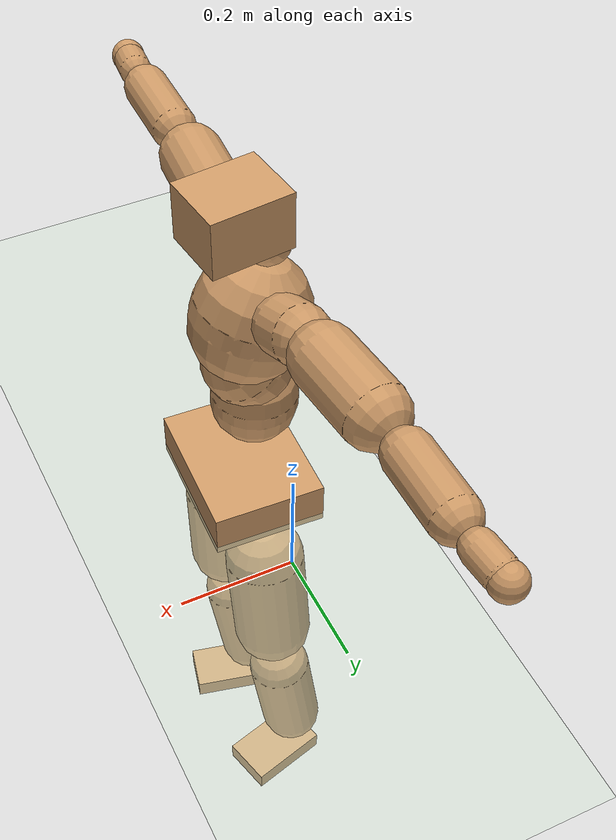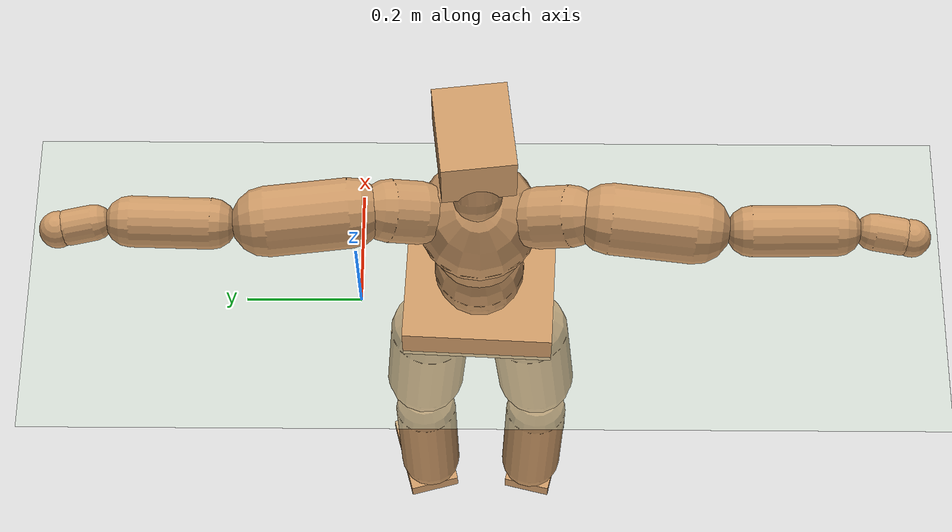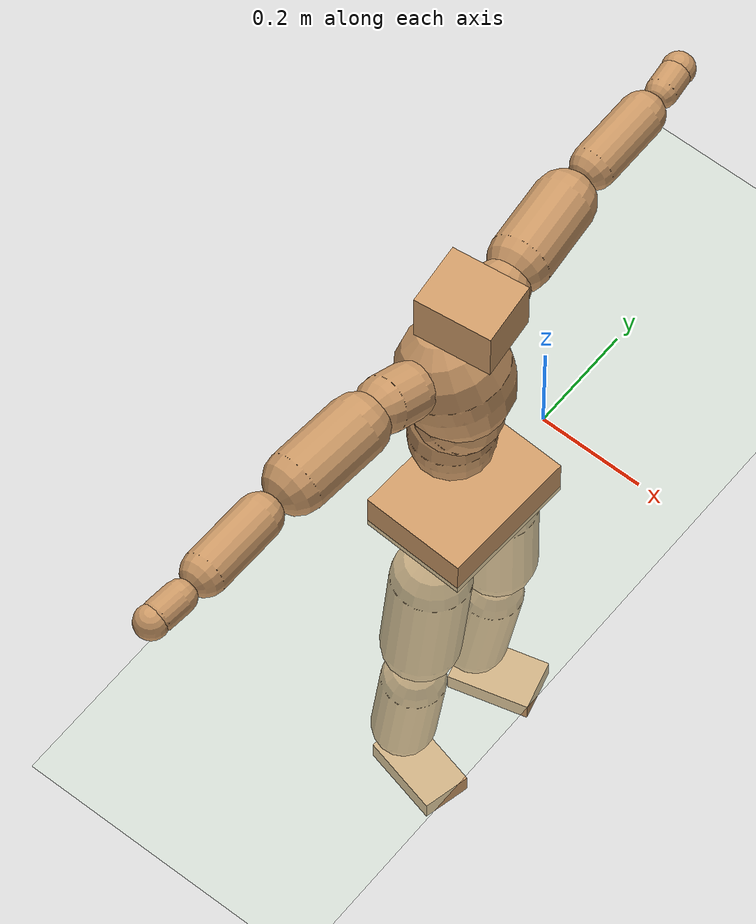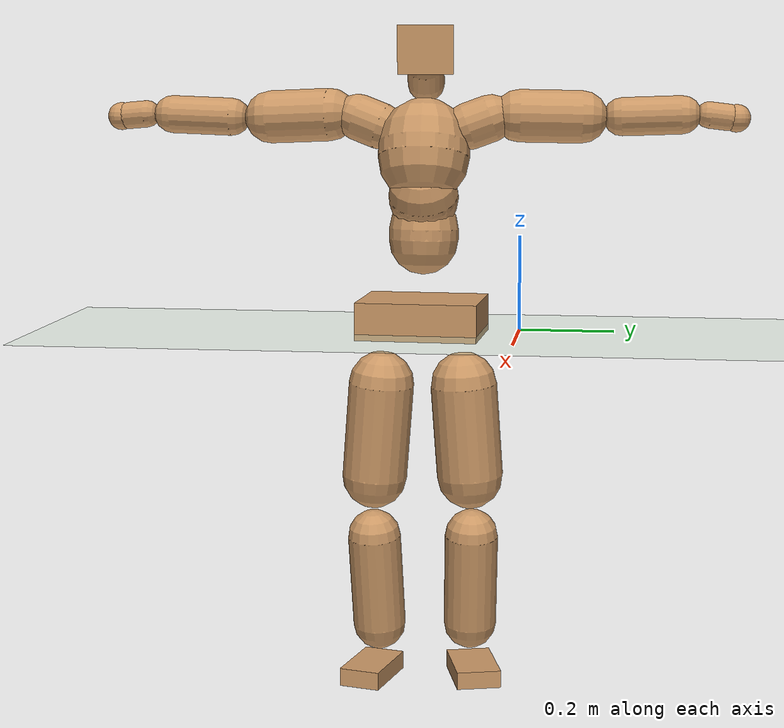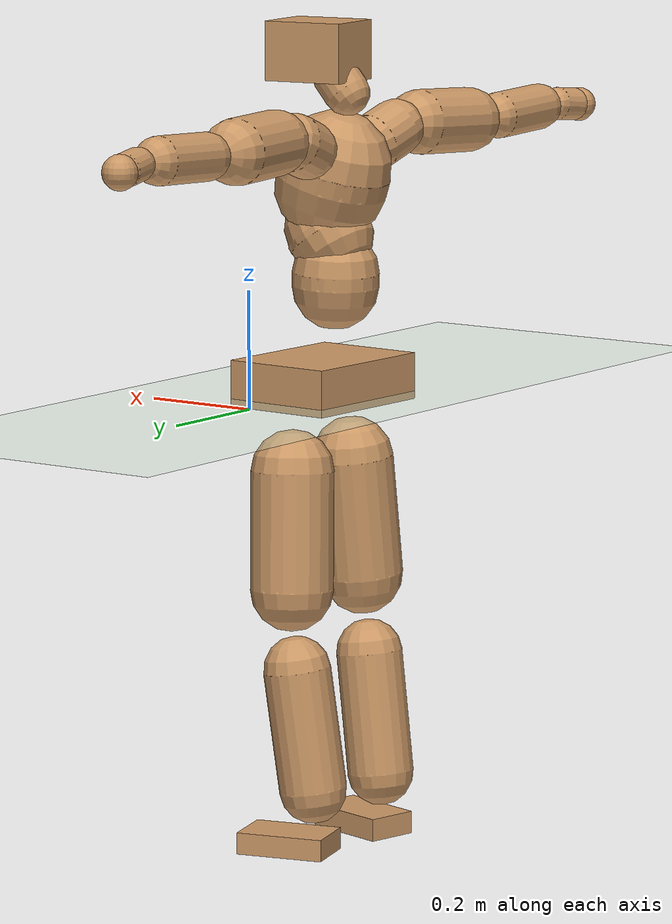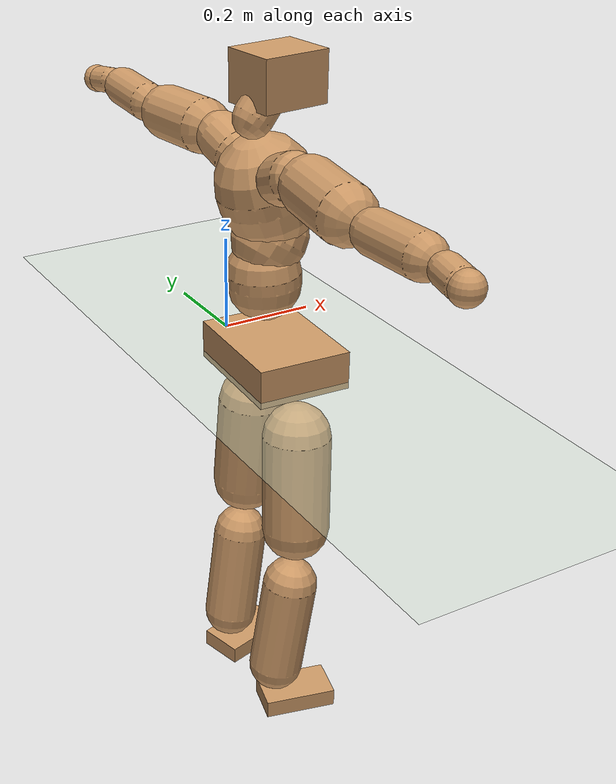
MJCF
<mujoco model="humanoid">
  <compiler coordinate="local" angle="radian"/>
  <default>
    <joint damping="0.0" armature="0.01" stiffness="0.0" limited="true"/>
    <geom conaffinity="1" condim="3" contype="7" margin="0.001" rgba="0.8 0.6 .4 1"/>
  </default>
  <asset>
    <texture type="skybox" builtin="gradient" rgb1=".4 .5 .6" rgb2="0 0 0" width="100" height="100"/>
    <texture builtin="flat" height="1278" mark="cross" markrgb="1 1 1" name="texgeom" random="0.01" rgb1="0.8 0.6 0.4" rgb2="0.8 0.6 0.4" type="cube" width="127"/>
    <texture builtin="checker" height="100" name="texplane" rgb1="0 0 0" rgb2="0.8 0.8 0.8" type="2d" width="100"/>
    <material name="MatPlane" reflectance="0.5" shininess="1" specular="1" texrepeat="60 60" texture="texplane"/>
    <material name="geom" texture="texgeom" texuniform="true"/>
  </asset>
  <worldbody>
    <light cutoff="100" diffuse="1 1 1" dir="-0 0 -1.3" directional="true" exponent="1" pos="0 0 1.3" specular=".1 .1 .1"/>
    <geom conaffinity="1" condim="3" name="floor" pos="0 0 0" rgba="0.8 0.9 0.8 1" size="100 100 .2" type="plane" material="MatPlane"/>
    <body name="Pelvis" pos="0.002 -0.2069 0.0374">
      <freejoint name="Pelvis"/>
      <geom type="box" contype="1" conaffinity="1" density="500" pos="-0.0052 0.0002 -0.0129" size="0.0976 0.1285 0.0397" quat="0.9997 0.0000 0.0000 -0.0225" name="Pelvis"/>
      <body name="L_Hip" pos="-0.0023 0.0847 -0.0906">
        <joint name="L_Hip_x" type="hinge" pos="0 0 0" axis="1 0 0" stiffness="800" damping="80" armature="0.02" range="-180.0000 180.0000"/>
        <joint name="L_Hip_y" type="hinge" pos="0 0 0" axis="0 1 0" stiffness="800" damping="80" armature="0.02" range="-180.0000 180.0000"/>
        <joint name="L_Hip_z" type="hinge" pos="0 0 0" axis="0 0 1" stiffness="800" damping="80" armature="0.02" range="-180.0000 180.0000"/>
        <geom type="capsule" contype="1" conaffinity="1" density="500" fromto="-0.0026 0.0045 -0.0672 -0.0104 0.0180 -0.2688" size="0.0708" name="L_Hip"/>
        <body name="L_Knee" pos="-0.013 0.0225 -0.336">
          <joint name="L_Knee_x" type="hinge" pos="0 0 0" axis="1 0 0" stiffness="800" damping="80" armature="0.02" range="-180.0000 180.0000"/>
          <joint name="L_Knee_y" type="hinge" pos="0 0 0" axis="0 1 0" stiffness="800" damping="80" armature="0.02" range="-180.0000 180.0000"/>
          <joint name="L_Knee_z" type="hinge" pos="0 0 0" axis="0 0 1" stiffness="800" damping="80" armature="0.02" range="-180.0000 180.0000"/>
          <geom type="capsule" contype="1" conaffinity="1" density="500" fromto="-0.0097 -0.0018 -0.0688 -0.0390 -0.0072 -0.2751" size="0.0575" name="L_Knee"/>
          <body name="L_Ankle" pos="-0.0487 -0.009 -0.3439">
            <joint name="L_Ankle_x" type="hinge" pos="0 0 0" axis="1 0 0" stiffness="800" damping="80" armature="0.02" range="-180.0000 180.0000"/>
            <joint name="L_Ankle_y" type="hinge" pos="0 0 0" axis="0 1 0" stiffness="800" damping="80" armature="0.02" range="-180.0000 180.0000"/>
            <joint name="L_Ankle_z" type="hinge" pos="0 0 0" axis="0 0 1" stiffness="800" damping="80" armature="0.02" range="-180.0000 180.0000"/>
            <geom type="box" contype="1" conaffinity="1" density="500" pos="0.0525 0.0139 -0.0244" size="0.0763 0.0479 0.0187" quat="0.9917 0.0000 0.0000 0.1289" name="L_Ankle"/>
            <body name="L_Toe" pos="0.1049 0.0278 -0.0489">
              <joint name="L_Toe_x" type="hinge" pos="0 0 0" axis="1 0 0" stiffness="500" damping="50" armature="0.02" range="-180.0000 180.0000"/>
              <joint name="L_Toe_y" type="hinge" pos="0 0 0" axis="0 1 0" stiffness="500" damping="50" armature="0.02" range="-180.0000 180.0000"/>
              <joint name="L_Toe_z" type="hinge" pos="0 0 0" axis="0 0 1" stiffness="500" damping="50" armature="0.02" range="-180.0000 180.0000"/>
              <geom type="box" contype="1" conaffinity="1" density="500" pos="0.0000 0.0000 0.0258" size="0.0009 0.0023 0.001" quat="0.9908 0.0000 0.0000 0.1353" name="L_Toe"/>
            </body>
          </body>
        </body>
      </body>
      <body name="R_Hip" pos="-0.0003 -0.0828 -0.0903">
        <joint name="R_Hip_x" type="hinge" pos="0 0 0" axis="1 0 0" stiffness="800" damping="80" armature="0.02" range="-180.0000 180.0000"/>
        <joint name="R_Hip_y" type="hinge" pos="0 0 0" axis="0 1 0" stiffness="800" damping="80" armature="0.02" range="-180.0000 180.0000"/>
        <joint name="R_Hip_z" type="hinge" pos="0 0 0" axis="0 0 1" stiffness="800" damping="80" armature="0.02" range="-180.0000 180.0000"/>
        <geom type="capsule" contype="1" conaffinity="1" density="500" fromto="-0.0029 -0.0056 -0.0686 -0.0118 -0.0224 -0.2745" size="0.0702" name="R_Hip"/>
        <body name="R_Knee" pos="-0.0147 -0.028 -0.3431">
          <joint name="R_Knee_x" type="hinge" pos="0 0 0" axis="1 0 0" stiffness="800" damping="80" armature="0.02" range="-180.0000 180.0000"/>
          <joint name="R_Knee_y" type="hinge" pos="0 0 0" axis="0 1 0" stiffness="800" damping="80" armature="0.02" range="-180.0000 180.0000"/>
          <joint name="R_Knee_z" type="hinge" pos="0 0 0" axis="0 0 1" stiffness="800" damping="80" armature="0.02" range="-180.0000 180.0000"/>
          <geom type="capsule" contype="1" conaffinity="1" density="500" fromto="-0.0095 0.0022 -0.0694 -0.0381 0.0089 -0.2778" size="0.0575" name="R_Knee"/>
          <body name="R_Ankle" pos="-0.0477 0.0112 -0.3472">
            <joint name="R_Ankle_x" type="hinge" pos="0 0 0" axis="1 0 0" stiffness="800" damping="80" armature="0.02" range="-180.0000 180.0000"/>
            <joint name="R_Ankle_y" type="hinge" pos="0 0 0" axis="0 1 0" stiffness="800" damping="80" armature="0.02" range="-180.0000 180.0000"/>
            <joint name="R_Ankle_z" type="hinge" pos="0 0 0" axis="0 0 1" stiffness="800" damping="80" armature="0.02" range="-180.0000 180.0000"/>
            <geom type="box" contype="1" conaffinity="1" density="500" pos="0.0543 -0.0130 -0.0224" size="0.0766 0.0448 0.0194" quat="0.9931 0.0000 0.0000 -0.1174" name="R_Ankle"/>
            <body name="R_Toe" pos="0.1086 -0.0261 -0.0449">
              <joint name="R_Toe_x" type="hinge" pos="0 0 0" axis="1 0 0" stiffness="500" damping="50" armature="0.02" range="-180.0000 180.0000"/>
              <joint name="R_Toe_y" type="hinge" pos="0 0 0" axis="0 1 0" stiffness="500" damping="50" armature="0.02" range="-180.0000 180.0000"/>
              <joint name="R_Toe_z" type="hinge" pos="0 0 0" axis="0 0 1" stiffness="500" damping="50" armature="0.02" range="-180.0000 180.0000"/>
              <geom type="box" contype="1" conaffinity="1" density="500" pos="0.0000 0.0000 0.0228" size="0.0009 0.0022 0.001" quat="0.9943 0.0000 0.0000 -0.1068" name="R_Toe"/>
            </body>
          </body>
        </body>
      </body>
      <body name="Torso" pos="-0.0285 -0.0005 0.1033">
        <joint name="Torso_x" type="hinge" pos="0 0 0" axis="1 0 0" stiffness="1000" damping="100" armature="0.02" range="-180.0000 180.0000"/>
        <joint name="Torso_y" type="hinge" pos="0 0 0" axis="0 1 0" stiffness="1000" damping="100" armature="0.02" range="-180.0000 180.0000"/>
        <joint name="Torso_z" type="hinge" pos="0 0 0" axis="0 0 1" stiffness="1000" damping="100" armature="0.02" range="-180.0000 180.0000"/>
        <geom type="capsule" contype="1" conaffinity="1" density="500" fromto="-0.0031 0.0007 0.0692 -0.0021 0.0004 0.0461" size="0.074" name="Torso"/>
        <body name="Spine" pos="-0.0052 0.0011 0.1154">
          <joint name="Spine_x" type="hinge" pos="0 0 0" axis="1 0 0" stiffness="1000" damping="100" armature="0.02" range="-180.0000 180.0000"/>
          <joint name="Spine_y" type="hinge" pos="0 0 0" axis="0 1 0" stiffness="1000" damping="100" armature="0.02" range="-180.0000 180.0000"/>
          <joint name="Spine_z" type="hinge" pos="0 0 0" axis="0 0 1" stiffness="1000" damping="100" armature="0.02" range="-180.0000 180.0000"/>
          <geom type="capsule" contype="1" conaffinity="1" density="500" fromto="0.0185 0.0004 0.0275 0.0123 0.0003 0.0183" size="0.0739" name="Spine"/>
          <body name="Chest" pos="0.0309 0.0007 0.0458">
            <joint name="Chest_x" type="hinge" pos="0 0 0" axis="1 0 0" stiffness="1000" damping="100" armature="0.02" range="-180.0000 180.0000"/>
            <joint name="Chest_y" type="hinge" pos="0 0 0" axis="0 1 0" stiffness="1000" damping="100" armature="0.02" range="-180.0000 180.0000"/>
            <joint name="Chest_z" type="hinge" pos="0 0 0" axis="0 0 1" stiffness="1000" damping="100" armature="0.02" range="-180.0000 180.0000"/>
            <geom type="capsule" contype="1" conaffinity="1" density="500" fromto="-0.0282 -0.0004 0.0874 -0.0188 -0.0002 0.0582" size="0.0969" name="Chest"/>
            <body name="Neck" pos="-0.0619 0.0002 0.203">
              <joint name="Neck_x" type="hinge" pos="0 0 0" axis="1 0 0" stiffness="500" damping="50" armature="0.02" range="-180.0000 180.0000"/>
              <joint name="Neck_y" type="hinge" pos="0 0 0" axis="0 1 0" stiffness="500" damping="50" armature="0.02" range="-180.0000 180.0000"/>
              <joint name="Neck_z" type="hinge" pos="0 0 0" axis="0 0 1" stiffness="500" damping="50" armature="0.02" range="-180.0000 180.0000"/>
              <geom type="capsule" contype="1" conaffinity="1" density="500" fromto="0.0084 0.0006 0.0105 0.0334 0.0025 0.0420" size="0.039" name="Neck"/>
              <body name="Head" pos="0.0418 0.0031 0.0525">
                <joint name="Head_x" type="hinge" pos="0 0 0" axis="1 0 0" stiffness="500" damping="50" armature="0.02" range="-180.0000 180.0000"/>
                <joint name="Head_y" type="hinge" pos="0 0 0" axis="0 1 0" stiffness="500" damping="50" armature="0.02" range="-180.0000 180.0000"/>
                <joint name="Head_z" type="hinge" pos="0 0 0" axis="0 0 1" stiffness="500" damping="50" armature="0.02" range="-180.0000 180.0000"/>
                <geom type="box" contype="1" conaffinity="1" density="500" pos="0.0219 0.0025 0.0272" size="0.0701 0.0573 0.0501" quat="0.9983 0.0000 0.0000 0.0576" name="Head"/>
              </body>
            </body>
            <body name="L_Thorax" pos="-0.036 0.0745 0.1176">
              <joint name="L_Thorax_x" type="hinge" pos="0 0 0" axis="1 0 0" stiffness="500" damping="50" armature="0.02" range="-180.0000 180.0000"/>
              <joint name="L_Thorax_y" type="hinge" pos="0 0 0" axis="0 1 0" stiffness="500" damping="50" armature="0.02" range="-180.0000 180.0000"/>
              <joint name="L_Thorax_z" type="hinge" pos="0 0 0" axis="0 0 1" stiffness="500" damping="50" armature="0.02" range="-180.0000 180.0000"/>
              <geom type="capsule" contype="1" conaffinity="1" density="500" fromto="-0.0018 0.0162 0.0060 -0.0072 0.0646 0.0238" size="0.0497" name="L_Thorax"/>
              <body name="L_Shoulder" pos="-0.009 0.0808 0.0298">
                <joint name="L_Shoulder_x" type="hinge" pos="0 0 0" axis="1 0 0" stiffness="500" damping="50" armature="0.02" range="-720.0000 720.0000"/>
                <joint name="L_Shoulder_y" type="hinge" pos="0 0 0" axis="0 1 0" stiffness="500" damping="50" armature="0.02" range="-720.0000 720.0000"/>
                <joint name="L_Shoulder_z" type="hinge" pos="0 0 0" axis="0 0 1" stiffness="500" damping="50" armature="0.02" range="-720.0000 720.0000"/>
                <geom type="capsule" contype="1" conaffinity="1" density="500" fromto="-0.0048 0.0433 -0.0009 -0.0194 0.1731 -0.0034" size="0.0553" name="L_Shoulder"/>
                <body name="L_Elbow" pos="-0.0242 0.2164 -0.0043">
                  <joint name="L_Elbow_x" type="hinge" pos="0 0 0" axis="1 0 0" stiffness="500" damping="50" armature="0.02" range="-720.0000 720.0000"/>
                  <joint name="L_Elbow_y" type="hinge" pos="0 0 0" axis="0 1 0" stiffness="500" damping="50" armature="0.02" range="-720.0000 720.0000"/>
                  <joint name="L_Elbow_z" type="hinge" pos="0 0 0" axis="0 0 1" stiffness="500" damping="50" armature="0.02" range="-720.0000 720.0000"/>
                  <geom type="capsule" contype="1" conaffinity="1" density="500" fromto="0.0003 0.0415 0.0015 0.0014 0.1660 0.0059" size="0.0402" name="L_Elbow"/>
                  <body name="L_Wrist" pos="0.0017 0.2075 0.0074">
                    <joint name="L_Wrist_x" type="hinge" pos="0 0 0" axis="1 0 0" stiffness="300" damping="30" armature="0.02" range="-180.0000 180.0000"/>
                    <joint name="L_Wrist_y" type="hinge" pos="0 0 0" axis="0 1 0" stiffness="300" damping="30" armature="0.02" range="-180.0000 180.0000"/>
                    <joint name="L_Wrist_z" type="hinge" pos="0 0 0" axis="0 0 1" stiffness="300" damping="30" armature="0.02" range="-180.0000 180.0000"/>
                    <geom type="capsule" contype="1" conaffinity="1" density="500" fromto="-0.0023 0.0143 -0.0017 -0.0093 0.0573 -0.0069" size="0.028" name="L_Wrist"/>
                    <body name="L_Hand" pos="-0.0116 0.0717 -0.0086">
                      <joint name="L_Hand_x" type="hinge" pos="0 0 0" axis="1 0 0" stiffness="300" damping="30" armature="0.02" range="-180.0000 180.0000"/>
                      <joint name="L_Hand_y" type="hinge" pos="0 0 0" axis="0 1 0" stiffness="300" damping="30" armature="0.02" range="-180.0000 180.0000"/>
                      <joint name="L_Hand_z" type="hinge" pos="0 0 0" axis="0 0 1" stiffness="300" damping="30" armature="0.02" range="-180.0000 180.0000"/>
                      <geom type="sphere" contype="1" conaffinity="1" density="500" size="0.0292" pos="0.0000 0.0000 0.0000" name="L_Hand"/>
                    </body>
                  </body>
                </body>
              </body>
            </body>
            <body name="R_Thorax" pos="-0.043 -0.0765 0.1162">
              <joint name="R_Thorax_x" type="hinge" pos="0 0 0" axis="1 0 0" stiffness="500" damping="50" armature="0.02" range="-180.0000 180.0000"/>
              <joint name="R_Thorax_y" type="hinge" pos="0 0 0" axis="0 1 0" stiffness="500" damping="50" armature="0.02" range="-180.0000 180.0000"/>
              <joint name="R_Thorax_z" type="hinge" pos="0 0 0" axis="0 0 1" stiffness="500" damping="50" armature="0.02" range="-180.0000 180.0000"/>
              <geom type="capsule" contype="1" conaffinity="1" density="500" fromto="-0.0022 -0.0171 0.0066 -0.0086 -0.0686 0.0262" size="0.049" name="R_Thorax"/>
              <body name="R_Shoulder" pos="-0.0108 -0.0857 0.0328">
                <joint name="R_Shoulder_x" type="hinge" pos="0 0 0" axis="1 0 0" stiffness="500" damping="50" armature="0.02" range="-720.0000 720.0000"/>
                <joint name="R_Shoulder_y" type="hinge" pos="0 0 0" axis="0 1 0" stiffness="500" damping="50" armature="0.02" range="-720.0000 720.0000"/>
                <joint name="R_Shoulder_z" type="hinge" pos="0 0 0" axis="0 0 1" stiffness="500" damping="50" armature="0.02" range="-720.0000 720.0000"/>
                <geom type="capsule" contype="1" conaffinity="1" density="500" fromto="-0.0043 -0.0437 -0.0019 -0.0171 -0.1749 -0.0078" size="0.056" name="R_Shoulder"/>
                <body name="R_Elbow" pos="-0.0214 -0.2187 -0.0097">
                  <joint name="R_Elbow_x" type="hinge" pos="0 0 0" axis="1 0 0" stiffness="500" damping="50" armature="0.02" range="-720.0000 720.0000"/>
                  <joint name="R_Elbow_y" type="hinge" pos="0 0 0" axis="0 1 0" stiffness="500" damping="50" armature="0.02" range="-720.0000 720.0000"/>
                  <joint name="R_Elbow_z" type="hinge" pos="0 0 0" axis="0 0 1" stiffness="500" damping="50" armature="0.02" range="-720.0000 720.0000"/>
                  <geom type="capsule" contype="1" conaffinity="1" density="500" fromto="-0.0002 -0.0434 0.0017 -0.0008 -0.1737 0.0068" size="0.0402" name="R_Elbow"/>
                  <body name="R_Wrist" pos="-0.001 -0.2172 0.0085">
                    <joint name="R_Wrist_x" type="hinge" pos="0 0 0" axis="1 0 0" stiffness="300" damping="30" armature="0.02" range="-180.0000 180.0000"/>
                    <joint name="R_Wrist_y" type="hinge" pos="0 0 0" axis="0 1 0" stiffness="300" damping="30" armature="0.02" range="-180.0000 180.0000"/>
                    <joint name="R_Wrist_z" type="hinge" pos="0 0 0" axis="0 0 1" stiffness="300" damping="30" armature="0.02" range="-180.0000 180.0000"/>
                    <geom type="capsule" contype="1" conaffinity="1" density="500" fromto="-0.0019 -0.0146 -0.0013 -0.0078 -0.0586 -0.0053" size="0.029" name="R_Wrist"/>
                    <body name="R_Hand" pos="-0.0097 -0.0732 -0.0066">
                      <joint name="R_Hand_x" type="hinge" pos="0 0 0" axis="1 0 0" stiffness="300" damping="30" armature="0.02" range="-180.0000 180.0000"/>
                      <joint name="R_Hand_y" type="hinge" pos="0 0 0" axis="0 1 0" stiffness="300" damping="30" armature="0.02" range="-180.0000 180.0000"/>
                      <joint name="R_Hand_z" type="hinge" pos="0 0 0" axis="0 0 1" stiffness="300" damping="30" armature="0.02" range="-180.0000 180.0000"/>
                      <geom type="sphere" contype="1" conaffinity="1" density="500" size="0.0298" pos="0.0000 0.0000 0.0000" name="R_Hand"/>
                    </body>
                  </body>
                </body>
              </body>
            </body>
          </body>
        </body>
      </body>
    </body>
  </worldbody>
  <actuator>
    <motor name="L_Hip_x" joint="L_Hip_x" gear="500"/>
    <motor name="L_Hip_y" joint="L_Hip_y" gear="500"/>
    <motor name="L_Hip_z" joint="L_Hip_z" gear="500"/>
    <motor name="L_Knee_x" joint="L_Knee_x" gear="500"/>
    <motor name="L_Knee_y" joint="L_Knee_y" gear="500"/>
    <motor name="L_Knee_z" joint="L_Knee_z" gear="500"/>
    <motor name="L_Ankle_x" joint="L_Ankle_x" gear="500"/>
    <motor name="L_Ankle_y" joint="L_Ankle_y" gear="500"/>
    <motor name="L_Ankle_z" joint="L_Ankle_z" gear="500"/>
    <motor name="L_Toe_x" joint="L_Toe_x" gear="500"/>
    <motor name="L_Toe_y" joint="L_Toe_y" gear="500"/>
    <motor name="L_Toe_z" joint="L_Toe_z" gear="500"/>
    <motor name="R_Hip_x" joint="R_Hip_x" gear="500"/>
    <motor name="R_Hip_y" joint="R_Hip_y" gear="500"/>
    <motor name="R_Hip_z" joint="R_Hip_z" gear="500"/>
    <motor name="R_Knee_x" joint="R_Knee_x" gear="500"/>
    <motor name="R_Knee_y" joint="R_Knee_y" gear="500"/>
    <motor name="R_Knee_z" joint="R_Knee_z" gear="500"/>
    <motor name="R_Ankle_x" joint="R_Ankle_x" gear="500"/>
    <motor name="R_Ankle_y" joint="R_Ankle_y" gear="500"/>
    <motor name="R_Ankle_z" joint="R_Ankle_z" gear="500"/>
    <motor name="R_Toe_x" joint="R_Toe_x" gear="500"/>
    <motor name="R_Toe_y" joint="R_Toe_y" gear="500"/>
    <motor name="R_Toe_z" joint="R_Toe_z" gear="500"/>
    <motor name="Torso_x" joint="Torso_x" gear="500"/>
    <motor name="Torso_y" joint="Torso_y" gear="500"/>
    <motor name="Torso_z" joint="Torso_z" gear="500"/>
    <motor name="Spine_x" joint="Spine_x" gear="500"/>
    <motor name="Spine_y" joint="Spine_y" gear="500"/>
    <motor name="Spine_z" joint="Spine_z" gear="500"/>
    <motor name="Chest_x" joint="Chest_x" gear="500"/>
    <motor name="Chest_y" joint="Chest_y" gear="500"/>
    <motor name="Chest_z" joint="Chest_z" gear="500"/>
    <motor name="Neck_x" joint="Neck_x" gear="500"/>
    <motor name="Neck_y" joint="Neck_y" gear="500"/>
    <motor name="Neck_z" joint="Neck_z" gear="500"/>
    <motor name="Head_x" joint="Head_x" gear="500"/>
    <motor name="Head_y" joint="Head_y" gear="500"/>
    <motor name="Head_z" joint="Head_z" gear="500"/>
    <motor name="L_Thorax_x" joint="L_Thorax_x" gear="500"/>
    <motor name="L_Thorax_y" joint="L_Thorax_y" gear="500"/>
    <motor name="L_Thorax_z" joint="L_Thorax_z" gear="500"/>
    <motor name="L_Shoulder_x" joint="L_Shoulder_x" gear="500"/>
    <motor name="L_Shoulder_y" joint="L_Shoulder_y" gear="500"/>
    <motor name="L_Shoulder_z" joint="L_Shoulder_z" gear="500"/>
    <motor name="L_Elbow_x" joint="L_Elbow_x" gear="500"/>
    <motor name="L_Elbow_y" joint="L_Elbow_y" gear="500"/>
    <motor name="L_Elbow_z" joint="L_Elbow_z" gear="500"/>
    <motor name="L_Wrist_x" joint="L_Wrist_x" gear="500"/>
    <motor name="L_Wrist_y" joint="L_Wrist_y" gear="500"/>
    <motor name="L_Wrist_z" joint="L_Wrist_z" gear="500"/>
    <motor name="L_Hand_x" joint="L_Hand_x" gear="500"/>
    <motor name="L_Hand_y" joint="L_Hand_y" gear="500"/>
    <motor name="L_Hand_z" joint="L_Hand_z" gear="500"/>
    <motor name="R_Thorax_x" joint="R_Thorax_x" gear="500"/>
    <motor name="R_Thorax_y" joint="R_Thorax_y" gear="500"/>
    <motor name="R_Thorax_z" joint="R_Thorax_z" gear="500"/>
    <motor name="R_Shoulder_x" joint="R_Shoulder_x" gear="500"/>
    <motor name="R_Shoulder_y" joint="R_Shoulder_y" gear="500"/>
    <motor name="R_Shoulder_z" joint="R_Shoulder_z" gear="500"/>
    <motor name="R_Elbow_x" joint="R_Elbow_x" gear="500"/>
    <motor name="R_Elbow_y" joint="R_Elbow_y" gear="500"/>
    <motor name="R_Elbow_z" joint="R_Elbow_z" gear="500"/>
    <motor name="R_Wrist_x" joint="R_Wrist_x" gear="500"/>
    <motor name="R_Wrist_y" joint="R_Wrist_y" gear="500"/>
    <motor name="R_Wrist_z" joint="R_Wrist_z" gear="500"/>
    <motor name="R_Hand_x" joint="R_Hand_x" gear="500"/>
    <motor name="R_Hand_y" joint="R_Hand_y" gear="500"/>
    <motor name="R_Hand_z" joint="R_Hand_z" gear="500"/>
  </actuator>
  <contact>
    <exclude body1="Torso" body2="Chest"/>
    <exclude body1="Head" body2="Chest"/>
    <exclude body1="R_Knee" body2="R_Toe"/>
    <exclude body1="R_Knee" body2="L_Ankle"/>
    <exclude body1="R_Knee" body2="L_Toe"/>
    <exclude body1="L_Knee" body2="L_Toe"/>
    <exclude body1="L_Knee" body2="R_Ankle"/>
    <exclude body1="L_Knee" body2="R_Toe"/>
    <exclude body1="L_Shoulder" body2="Chest"/>
    <exclude body1="R_Shoulder" body2="Chest"/>
  </contact>
  <sensor/>
  <size njmax="700" nconmax="700"/>
</mujoco>
